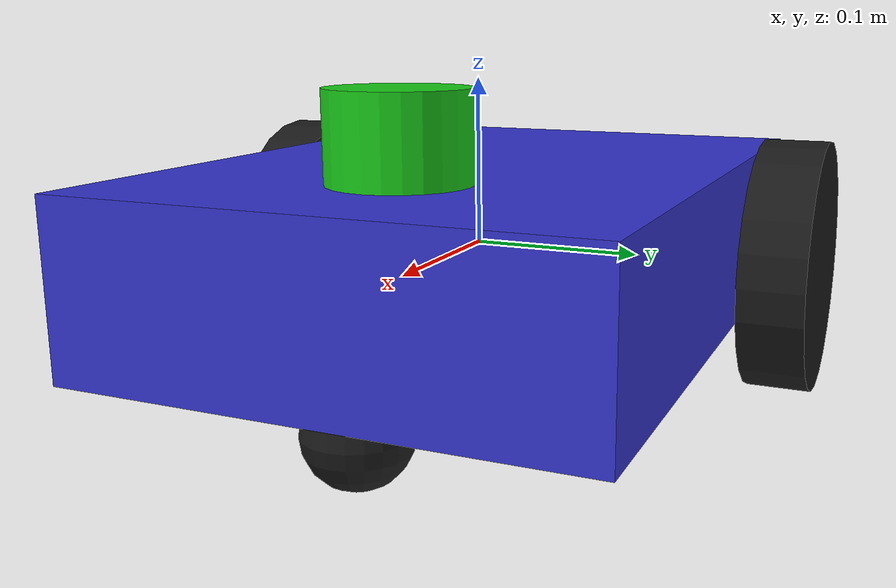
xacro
<?xml version="1.0"?>
<robot name="robotum" xmlns:xacro="http://www.ros.org/wiki/xacro">

  <!-- ===== BOYUTLAR: tasarimi buradan degistir ===== -->
  <xacro:property name="chassis_x" value="0.4"/>
  <xacro:property name="chassis_y" value="0.3"/>
  <xacro:property name="chassis_z" value="0.1"/>
  <xacro:property name="chassis_mass" value="5.0"/>
  <xacro:property name="chassis_height" value="0.1"/>  <!-- govde merkezinin yerden yuksekligi -->

  <xacro:property name="wheel_r" value="0.08"/>
  <xacro:property name="wheel_w" value="0.04"/>
  <xacro:property name="wheel_mass" value="0.5"/>
  <xacro:property name="wheel_x" value="-0.1"/>
  <xacro:property name="wheel_gap" value="0.005"/>
  <xacro:property name="wheel_y" value="${chassis_y/2 + wheel_w/2 + wheel_gap}"/>

  <xacro:property name="caster_r" value="0.03"/>
  <xacro:property name="caster_x" value="0.15"/>

  <!-- ===== RENKLER (RViz icin) ===== -->
  <material name="mavi"><color rgba="0.2 0.2 0.8 1"/></material>
  <material name="siyah"><color rgba="0.1 0.1 0.1 1"/></material>
  <material name="yesil"><color rgba="0.1 0.8 0.1 1"/></material>

  <!-- ===== GOVDE ===== -->
  <link name="base_link">
    <visual>
      <geometry><box size="${chassis_x} ${chassis_y} ${chassis_z}"/></geometry>
      <material name="mavi"/>
    </visual>
    <collision>
      <geometry><box size="${chassis_x} ${chassis_y} ${chassis_z}"/></geometry>
    </collision>

    <!-- caster: govdenin ikinci collision'i -->
    <visual>
      <origin xyz="${caster_x} 0 ${caster_r - chassis_height}"/>
      <geometry><sphere radius="${caster_r}"/></geometry>
      <material name="siyah"/>
    </visual>
    <collision>
      <origin xyz="${caster_x} 0 ${caster_r - chassis_height}"/>
      <geometry><sphere radius="${caster_r}"/></geometry>
    </collision>

    <inertial>
      <mass value="${chassis_mass}"/>
      <inertia ixx="${chassis_mass*(chassis_y**2 + chassis_z**2)/12}" ixy="0" ixz="0"
               iyy="${chassis_mass*(chassis_x**2 + chassis_z**2)/12}" iyz="0"
               izz="${chassis_mass*(chassis_x**2 + chassis_y**2)/12}"/>
    </inertial>
  </link>

  <!-- ===== TEKERLEK MAKROSU ===== -->
  <xacro:macro name="wheel" params="prefix y_sign">
    <link name="${prefix}_wheel">
      <visual>
        <origin rpy="${-pi/2} 0 0"/>
        <geometry><cylinder radius="${wheel_r}" length="${wheel_w}"/></geometry>
        <material name="siyah"/>
      </visual>
      <collision>
        <origin rpy="${-pi/2} 0 0"/>
        <geometry><cylinder radius="${wheel_r}" length="${wheel_w}"/></geometry>
      </collision>
      <!-- eksen y yonunde oldugu icin Iyy = m r^2 / 2 -->
      <inertial>
        <mass value="${wheel_mass}"/>
        <inertia ixx="${wheel_mass*(3*wheel_r**2 + wheel_w**2)/12}" ixy="0" ixz="0"
                 iyy="${wheel_mass*wheel_r**2/2}" iyz="0"
                 izz="${wheel_mass*(3*wheel_r**2 + wheel_w**2)/12}"/>
      </inertial>
    </link>

    <joint name="${prefix}_wheel_joint" type="continuous">
      <parent link="base_link"/>
      <child link="${prefix}_wheel"/>
      <origin xyz="${wheel_x} ${y_sign*wheel_y} ${wheel_r - chassis_height}"/>
      <axis xyz="0 1 0"/>
    </joint>
  </xacro:macro>

  <xacro:wheel prefix="left"  y_sign="1"/>
  <xacro:wheel prefix="right" y_sign="-1"/>

  <!-- ===== EK DOSYALAR ===== -->
  <xacro:include filename="gazebo.xacro"/>   <!-- surus plugini, joint state, surtunme -->
  <xacro:include filename="lidar.xacro"/>    <!-- LiDAR: link + joint + sensor -->

</robot>

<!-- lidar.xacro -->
<robot xmlns:xacro="http://www.ros.org/wiki/xacro">

  <xacro:property name="lidar_r" value="0.04"/>
  <xacro:property name="lidar_h" value="0.05"/>
  <xacro:property name="lidar_mass" value="0.1"/>
  <xacro:property name="lidar_x" value="0.1"/>

  <link name="lidar_link">
    <visual>
      <geometry><cylinder radius="${lidar_r}" length="${lidar_h}"/></geometry>
      <material name="yesil"/>
    </visual>
    <collision>
      <geometry><cylinder radius="${lidar_r}" length="${lidar_h}"/></geometry>
    </collision>
    <inertial>
      <mass value="${lidar_mass}"/>
      <inertia ixx="${lidar_mass*(3*lidar_r**2 + lidar_h**2)/12}" ixy="0" ixz="0"
               iyy="${lidar_mass*(3*lidar_r**2 + lidar_h**2)/12}" iyz="0"
               izz="${lidar_mass*lidar_r**2/2}"/>
    </inertial>
  </link>

  <joint name="lidar_joint" type="fixed">
    <parent link="base_link"/>
    <child link="lidar_link"/>
    <origin xyz="${lidar_x} 0 ${chassis_z/2 + lidar_h/2}"/>
  </joint>

  <gazebo reference="lidar_link">
    <sensor name="lidar" type="gpu_lidar">
      <!-- mesajin frame_id'si TF agacindaki link adiyla ayni olmali -->
      <gz_frame_id>lidar_link</gz_frame_id>
      <topic>scan</topic>
      <update_rate>10</update_rate>
      <always_on>true</always_on>
      <visualize>true</visualize>
      <lidar>
        <scan>
          <horizontal>
            <samples>360</samples>
            <resolution>1</resolution>
            <min_angle>-3.14159</min_angle>
            <max_angle>3.14159</max_angle>
          </horizontal>
          <vertical>
            <samples>1</samples>
            <min_angle>0</min_angle>
            <max_angle>0</max_angle>
          </vertical>
        </scan>
        <range>
          <min>0.1</min>
          <max>10.0</max>
          <resolution>0.01</resolution>
        </range>
      </lidar>
    </sensor>
  </gazebo>

</robot>
